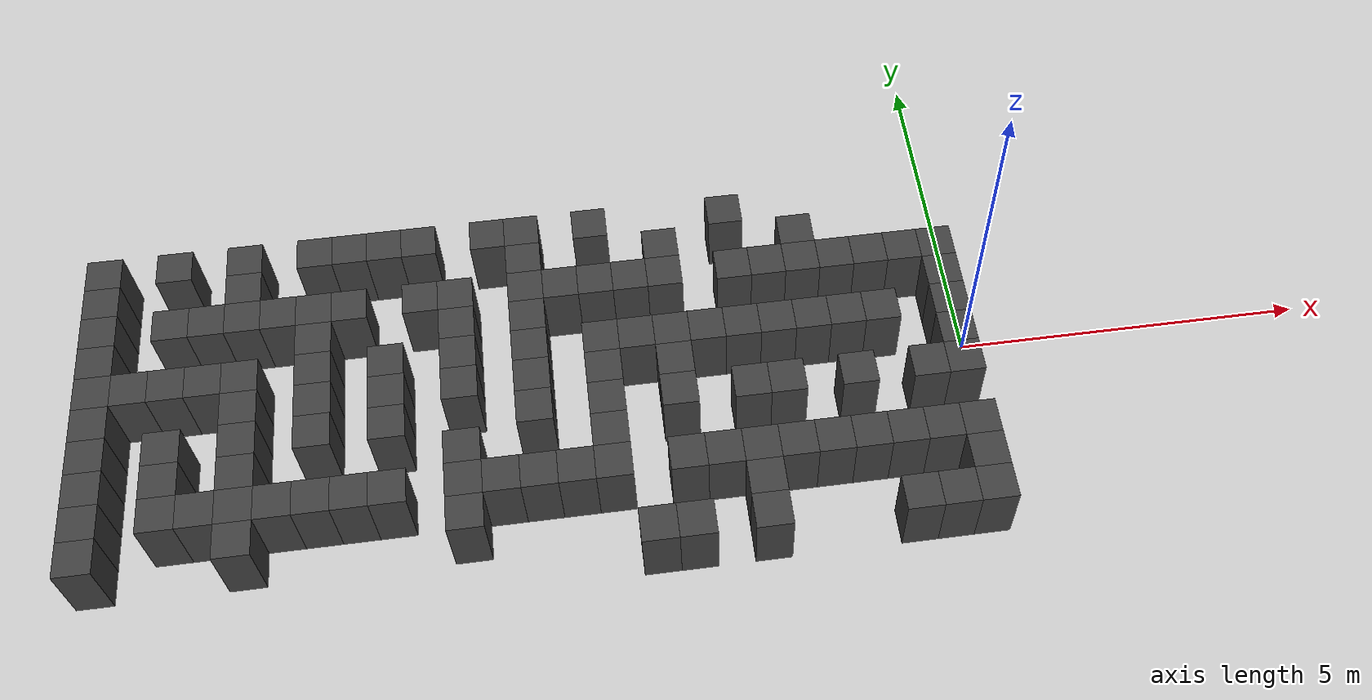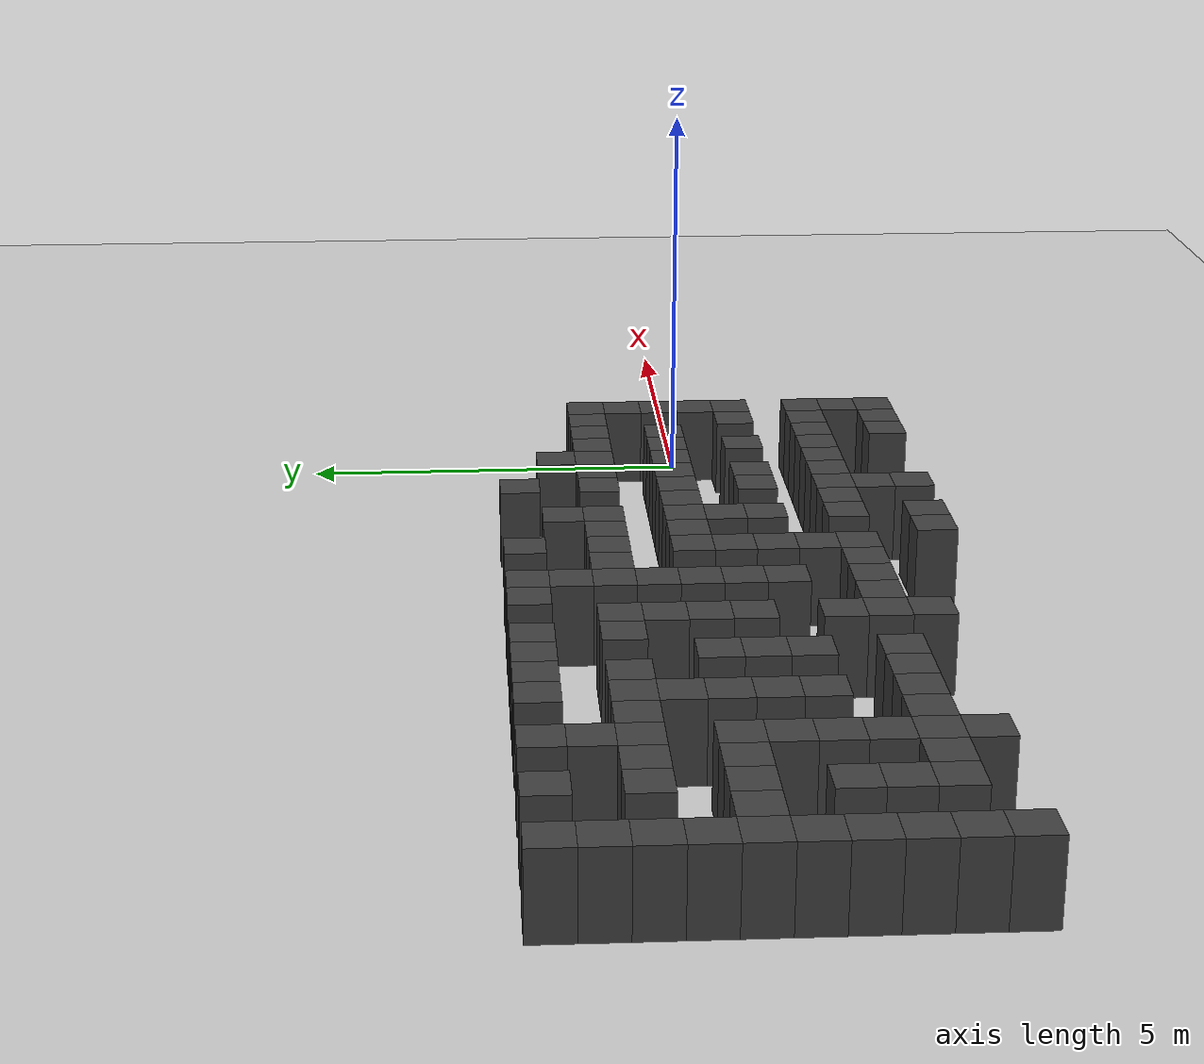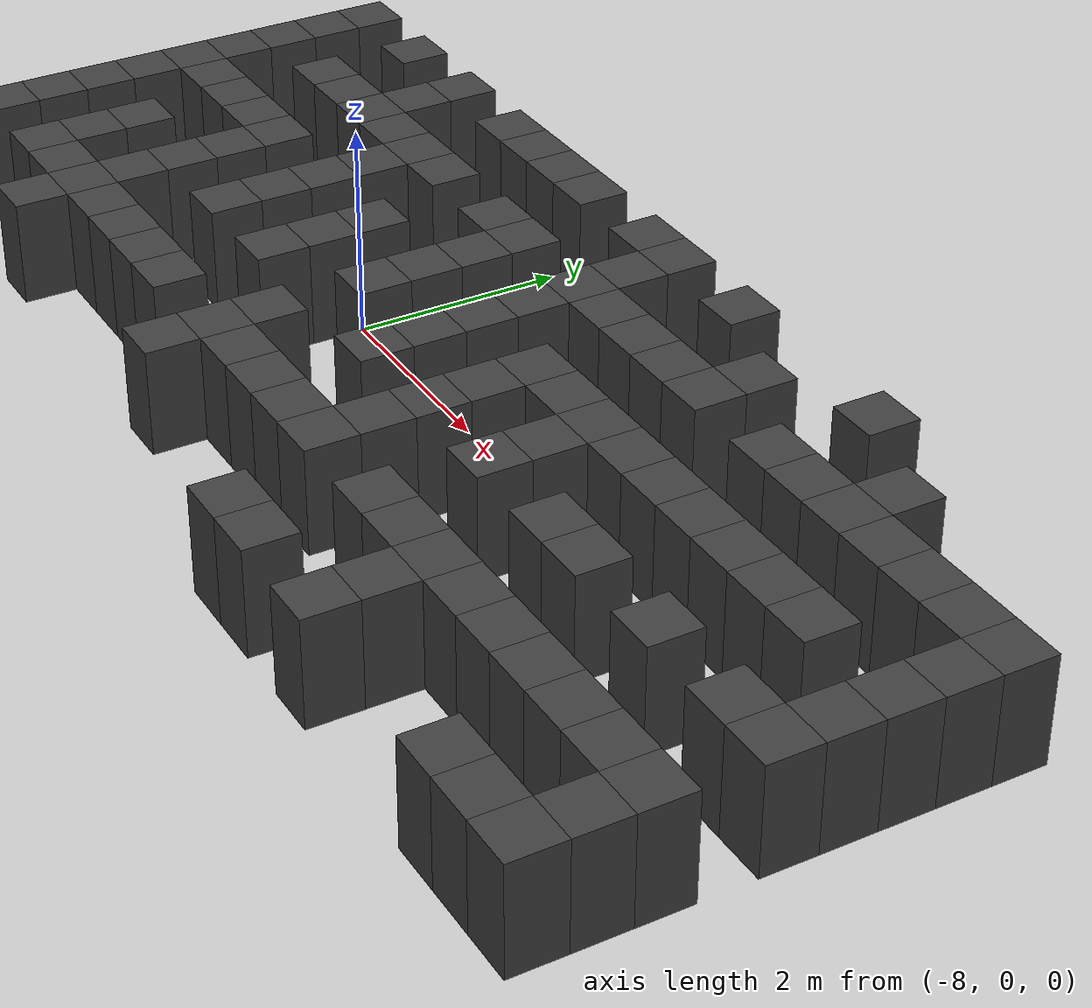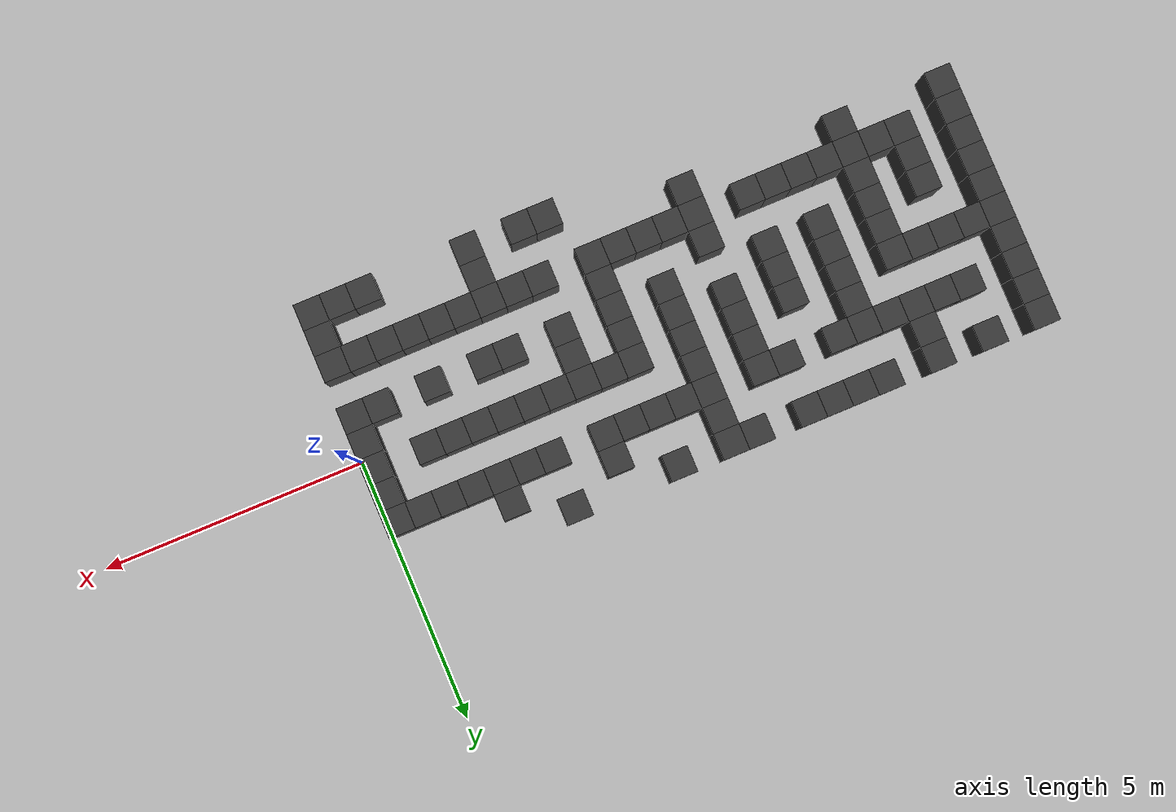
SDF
<sdf version="1.7">
 <world name="map_15497">
  <model name="ground_plane">
   <static>true</static>
   <link name="link">
    <collision name="collision">
     <geometry><plane><normal>0 0 1</normal><size>200 200</size></plane></geometry>
    </collision>
    <visual name="visual">
     <geometry><plane><normal>0 0 1</normal><size>200 200</size></plane></geometry>
     <material><ambient>0.8 0.8 0.8 1</ambient><diffuse>0.8 0.8 0.8 1</diffuse></material>
    </visual>
   </link>
  </model>
  <model name="maze_environment">
   <static>true</static>
   <link name="wall_465">
    <pose>-12.250 2.250 0.500 0 0 0</pose>
    <collision name="col"><geometry><box><size>0.5 0.5 1.0</size></box></geometry></collision>
    <visual name="vis">
     <geometry><box><size>0.5 0.5 1.0</size></box></geometry>
     <material><ambient>0.15 0.15 0.15 1</ambient><diffuse>0.25 0.25 0.25 1</diffuse></material>
    </visual>
   </link>
   <link name="wall_466">
    <pose>-11.250 2.250 0.500 0 0 0</pose>
    <collision name="col"><geometry><box><size>0.5 0.5 1.0</size></box></geometry></collision>
    <visual name="vis">
     <geometry><box><size>0.5 0.5 1.0</size></box></geometry>
     <material><ambient>0.15 0.15 0.15 1</ambient><diffuse>0.25 0.25 0.25 1</diffuse></material>
    </visual>
   </link>
   <link name="wall_467">
    <pose>-10.250 2.250 0.500 0 0 0</pose>
    <collision name="col"><geometry><box><size>0.5 0.5 1.0</size></box></geometry></collision>
    <visual name="vis">
     <geometry><box><size>0.5 0.5 1.0</size></box></geometry>
     <material><ambient>0.15 0.15 0.15 1</ambient><diffuse>0.25 0.25 0.25 1</diffuse></material>
    </visual>
   </link>
   <link name="wall_468">
    <pose>-9.250 2.250 0.500 0 0 0</pose>
    <collision name="col"><geometry><box><size>0.5 0.5 1.0</size></box></geometry></collision>
    <visual name="vis">
     <geometry><box><size>0.5 0.5 1.0</size></box></geometry>
     <material><ambient>0.15 0.15 0.15 1</ambient><diffuse>0.25 0.25 0.25 1</diffuse></material>
    </visual>
   </link>
   <link name="wall_469">
    <pose>-8.750 2.250 0.500 0 0 0</pose>
    <collision name="col"><geometry><box><size>0.5 0.5 1.0</size></box></geometry></collision>
    <visual name="vis">
     <geometry><box><size>0.5 0.5 1.0</size></box></geometry>
     <material><ambient>0.15 0.15 0.15 1</ambient><diffuse>0.25 0.25 0.25 1</diffuse></material>
    </visual>
   </link>
   <link name="wall_470">
    <pose>-8.250 2.250 0.500 0 0 0</pose>
    <collision name="col"><geometry><box><size>0.5 0.5 1.0</size></box></geometry></collision>
    <visual name="vis">
     <geometry><box><size>0.5 0.5 1.0</size></box></geometry>
     <material><ambient>0.15 0.15 0.15 1</ambient><diffuse>0.25 0.25 0.25 1</diffuse></material>
    </visual>
   </link>
   <link name="wall_471">
    <pose>-7.750 2.250 0.500 0 0 0</pose>
    <collision name="col"><geometry><box><size>0.5 0.5 1.0</size></box></geometry></collision>
    <visual name="vis">
     <geometry><box><size>0.5 0.5 1.0</size></box></geometry>
     <material><ambient>0.15 0.15 0.15 1</ambient><diffuse>0.25 0.25 0.25 1</diffuse></material>
    </visual>
   </link>
   <link name="wall_472">
    <pose>-6.750 2.250 0.500 0 0 0</pose>
    <collision name="col"><geometry><box><size>0.5 0.5 1.0</size></box></geometry></collision>
    <visual name="vis">
     <geometry><box><size>0.5 0.5 1.0</size></box></geometry>
     <material><ambient>0.15 0.15 0.15 1</ambient><diffuse>0.25 0.25 0.25 1</diffuse></material>
    </visual>
   </link>
   <link name="wall_473">
    <pose>-6.250 2.250 0.500 0 0 0</pose>
    <collision name="col"><geometry><box><size>0.5 0.5 1.0</size></box></geometry></collision>
    <visual name="vis">
     <geometry><box><size>0.5 0.5 1.0</size></box></geometry>
     <material><ambient>0.15 0.15 0.15 1</ambient><diffuse>0.25 0.25 0.25 1</diffuse></material>
    </visual>
   </link>
   <link name="wall_474">
    <pose>-5.250 2.250 0.500 0 0 0</pose>
    <collision name="col"><geometry><box><size>0.5 0.5 1.0</size></box></geometry></collision>
    <visual name="vis">
     <geometry><box><size>0.5 0.5 1.0</size></box></geometry>
     <material><ambient>0.15 0.15 0.15 1</ambient><diffuse>0.25 0.25 0.25 1</diffuse></material>
    </visual>
   </link>
   <link name="wall_475">
    <pose>-3.250 2.250 0.500 0 0 0</pose>
    <collision name="col"><geometry><box><size>0.5 0.5 1.0</size></box></geometry></collision>
    <visual name="vis">
     <geometry><box><size>0.5 0.5 1.0</size></box></geometry>
     <material><ambient>0.15 0.15 0.15 1</ambient><diffuse>0.25 0.25 0.25 1</diffuse></material>
    </visual>
   </link>
   <link name="wall_497">
    <pose>-12.250 1.750 0.500 0 0 0</pose>
    <collision name="col"><geometry><box><size>0.5 0.5 1.0</size></box></geometry></collision>
    <visual name="vis">
     <geometry><box><size>0.5 0.5 1.0</size></box></geometry>
     <material><ambient>0.15 0.15 0.15 1</ambient><diffuse>0.25 0.25 0.25 1</diffuse></material>
    </visual>
   </link>
   <link name="wall_498">
    <pose>-10.250 1.750 0.500 0 0 0</pose>
    <collision name="col"><geometry><box><size>0.5 0.5 1.0</size></box></geometry></collision>
    <visual name="vis">
     <geometry><box><size>0.5 0.5 1.0</size></box></geometry>
     <material><ambient>0.15 0.15 0.15 1</ambient><diffuse>0.25 0.25 0.25 1</diffuse></material>
    </visual>
   </link>
   <link name="wall_499">
    <pose>-6.250 1.750 0.500 0 0 0</pose>
    <collision name="col"><geometry><box><size>0.5 0.5 1.0</size></box></geometry></collision>
    <visual name="vis">
     <geometry><box><size>0.5 0.5 1.0</size></box></geometry>
     <material><ambient>0.15 0.15 0.15 1</ambient><diffuse>0.25 0.25 0.25 1</diffuse></material>
    </visual>
   </link>
   <link name="wall_500">
    <pose>-4.250 1.750 0.500 0 0 0</pose>
    <collision name="col"><geometry><box><size>0.5 0.5 1.0</size></box></geometry></collision>
    <visual name="vis">
     <geometry><box><size>0.5 0.5 1.0</size></box></geometry>
     <material><ambient>0.15 0.15 0.15 1</ambient><diffuse>0.25 0.25 0.25 1</diffuse></material>
    </visual>
   </link>
   <link name="wall_501">
    <pose>-2.250 1.750 0.500 0 0 0</pose>
    <collision name="col"><geometry><box><size>0.5 0.5 1.0</size></box></geometry></collision>
    <visual name="vis">
     <geometry><box><size>0.5 0.5 1.0</size></box></geometry>
     <material><ambient>0.15 0.15 0.15 1</ambient><diffuse>0.25 0.25 0.25 1</diffuse></material>
    </visual>
   </link>
   <link name="wall_510">
    <pose>-12.250 1.250 0.500 0 0 0</pose>
    <collision name="col"><geometry><box><size>0.5 0.5 1.0</size></box></geometry></collision>
    <visual name="vis">
     <geometry><box><size>0.5 0.5 1.0</size></box></geometry>
     <material><ambient>0.15 0.15 0.15 1</ambient><diffuse>0.25 0.25 0.25 1</diffuse></material>
    </visual>
   </link>
   <link name="wall_511">
    <pose>-11.250 1.250 0.500 0 0 0</pose>
    <collision name="col"><geometry><box><size>0.5 0.5 1.0</size></box></geometry></collision>
    <visual name="vis">
     <geometry><box><size>0.5 0.5 1.0</size></box></geometry>
     <material><ambient>0.15 0.15 0.15 1</ambient><diffuse>0.25 0.25 0.25 1</diffuse></material>
    </visual>
   </link>
   <link name="wall_512">
    <pose>-10.750 1.250 0.500 0 0 0</pose>
    <collision name="col"><geometry><box><size>0.5 0.5 1.0</size></box></geometry></collision>
    <visual name="vis">
     <geometry><box><size>0.5 0.5 1.0</size></box></geometry>
     <material><ambient>0.15 0.15 0.15 1</ambient><diffuse>0.25 0.25 0.25 1</diffuse></material>
    </visual>
   </link>
   <link name="wall_513">
    <pose>-10.250 1.250 0.500 0 0 0</pose>
    <collision name="col"><geometry><box><size>0.5 0.5 1.0</size></box></geometry></collision>
    <visual name="vis">
     <geometry><box><size>0.5 0.5 1.0</size></box></geometry>
     <material><ambient>0.15 0.15 0.15 1</ambient><diffuse>0.25 0.25 0.25 1</diffuse></material>
    </visual>
   </link>
   <link name="wall_514">
    <pose>-9.750 1.250 0.500 0 0 0</pose>
    <collision name="col"><geometry><box><size>0.5 0.5 1.0</size></box></geometry></collision>
    <visual name="vis">
     <geometry><box><size>0.5 0.5 1.0</size></box></geometry>
     <material><ambient>0.15 0.15 0.15 1</ambient><diffuse>0.25 0.25 0.25 1</diffuse></material>
    </visual>
   </link>
   <link name="wall_515">
    <pose>-9.250 1.250 0.500 0 0 0</pose>
    <collision name="col"><geometry><box><size>0.5 0.5 1.0</size></box></geometry></collision>
    <visual name="vis">
     <geometry><box><size>0.5 0.5 1.0</size></box></geometry>
     <material><ambient>0.15 0.15 0.15 1</ambient><diffuse>0.25 0.25 0.25 1</diffuse></material>
    </visual>
   </link>
   <link name="wall_516">
    <pose>-8.750 1.250 0.500 0 0 0</pose>
    <collision name="col"><geometry><box><size>0.5 0.5 1.0</size></box></geometry></collision>
    <visual name="vis">
     <geometry><box><size>0.5 0.5 1.0</size></box></geometry>
     <material><ambient>0.15 0.15 0.15 1</ambient><diffuse>0.25 0.25 0.25 1</diffuse></material>
    </visual>
   </link>
   <link name="wall_517">
    <pose>-7.750 1.250 0.500 0 0 0</pose>
    <collision name="col"><geometry><box><size>0.5 0.5 1.0</size></box></geometry></collision>
    <visual name="vis">
     <geometry><box><size>0.5 0.5 1.0</size></box></geometry>
     <material><ambient>0.15 0.15 0.15 1</ambient><diffuse>0.25 0.25 0.25 1</diffuse></material>
    </visual>
   </link>
   <link name="wall_518">
    <pose>-7.250 1.250 0.500 0 0 0</pose>
    <collision name="col"><geometry><box><size>0.5 0.5 1.0</size></box></geometry></collision>
    <visual name="vis">
     <geometry><box><size>0.5 0.5 1.0</size></box></geometry>
     <material><ambient>0.15 0.15 0.15 1</ambient><diffuse>0.25 0.25 0.25 1</diffuse></material>
    </visual>
   </link>
   <link name="wall_519">
    <pose>-6.250 1.250 0.500 0 0 0</pose>
    <collision name="col"><geometry><box><size>0.5 0.5 1.0</size></box></geometry></collision>
    <visual name="vis">
     <geometry><box><size>0.5 0.5 1.0</size></box></geometry>
     <material><ambient>0.15 0.15 0.15 1</ambient><diffuse>0.25 0.25 0.25 1</diffuse></material>
    </visual>
   </link>
   <link name="wall_520">
    <pose>-5.750 1.250 0.500 0 0 0</pose>
    <collision name="col"><geometry><box><size>0.5 0.5 1.0</size></box></geometry></collision>
    <visual name="vis">
     <geometry><box><size>0.5 0.5 1.0</size></box></geometry>
     <material><ambient>0.15 0.15 0.15 1</ambient><diffuse>0.25 0.25 0.25 1</diffuse></material>
    </visual>
   </link>
   <link name="wall_521">
    <pose>-5.250 1.250 0.500 0 0 0</pose>
    <collision name="col"><geometry><box><size>0.5 0.5 1.0</size></box></geometry></collision>
    <visual name="vis">
     <geometry><box><size>0.5 0.5 1.0</size></box></geometry>
     <material><ambient>0.15 0.15 0.15 1</ambient><diffuse>0.25 0.25 0.25 1</diffuse></material>
    </visual>
   </link>
   <link name="wall_522">
    <pose>-4.750 1.250 0.500 0 0 0</pose>
    <collision name="col"><geometry><box><size>0.5 0.5 1.0</size></box></geometry></collision>
    <visual name="vis">
     <geometry><box><size>0.5 0.5 1.0</size></box></geometry>
     <material><ambient>0.15 0.15 0.15 1</ambient><diffuse>0.25 0.25 0.25 1</diffuse></material>
    </visual>
   </link>
   <link name="wall_523">
    <pose>-4.250 1.250 0.500 0 0 0</pose>
    <collision name="col"><geometry><box><size>0.5 0.5 1.0</size></box></geometry></collision>
    <visual name="vis">
     <geometry><box><size>0.5 0.5 1.0</size></box></geometry>
     <material><ambient>0.15 0.15 0.15 1</ambient><diffuse>0.25 0.25 0.25 1</diffuse></material>
    </visual>
   </link>
   <link name="wall_524">
    <pose>-3.250 1.250 0.500 0 0 0</pose>
    <collision name="col"><geometry><box><size>0.5 0.5 1.0</size></box></geometry></collision>
    <visual name="vis">
     <geometry><box><size>0.5 0.5 1.0</size></box></geometry>
     <material><ambient>0.15 0.15 0.15 1</ambient><diffuse>0.25 0.25 0.25 1</diffuse></material>
    </visual>
   </link>
   <link name="wall_525">
    <pose>-2.750 1.250 0.500 0 0 0</pose>
    <collision name="col"><geometry><box><size>0.5 0.5 1.0</size></box></geometry></collision>
    <visual name="vis">
     <geometry><box><size>0.5 0.5 1.0</size></box></geometry>
     <material><ambient>0.15 0.15 0.15 1</ambient><diffuse>0.25 0.25 0.25 1</diffuse></material>
    </visual>
   </link>
   <link name="wall_526">
    <pose>-2.250 1.250 0.500 0 0 0</pose>
    <collision name="col"><geometry><box><size>0.5 0.5 1.0</size></box></geometry></collision>
    <visual name="vis">
     <geometry><box><size>0.5 0.5 1.0</size></box></geometry>
     <material><ambient>0.15 0.15 0.15 1</ambient><diffuse>0.25 0.25 0.25 1</diffuse></material>
    </visual>
   </link>
   <link name="wall_527">
    <pose>-1.750 1.250 0.500 0 0 0</pose>
    <collision name="col"><geometry><box><size>0.5 0.5 1.0</size></box></geometry></collision>
    <visual name="vis">
     <geometry><box><size>0.5 0.5 1.0</size></box></geometry>
     <material><ambient>0.15 0.15 0.15 1</ambient><diffuse>0.25 0.25 0.25 1</diffuse></material>
    </visual>
   </link>
   <link name="wall_528">
    <pose>-1.250 1.250 0.500 0 0 0</pose>
    <collision name="col"><geometry><box><size>0.5 0.5 1.0</size></box></geometry></collision>
    <visual name="vis">
     <geometry><box><size>0.5 0.5 1.0</size></box></geometry>
     <material><ambient>0.15 0.15 0.15 1</ambient><diffuse>0.25 0.25 0.25 1</diffuse></material>
    </visual>
   </link>
   <link name="wall_529">
    <pose>-0.750 1.250 0.500 0 0 0</pose>
    <collision name="col"><geometry><box><size>0.5 0.5 1.0</size></box></geometry></collision>
    <visual name="vis">
     <geometry><box><size>0.5 0.5 1.0</size></box></geometry>
     <material><ambient>0.15 0.15 0.15 1</ambient><diffuse>0.25 0.25 0.25 1</diffuse></material>
    </visual>
   </link>
   <link name="wall_530">
    <pose>-0.250 1.250 0.500 0 0 0</pose>
    <collision name="col"><geometry><box><size>0.5 0.5 1.0</size></box></geometry></collision>
    <visual name="vis">
     <geometry><box><size>0.5 0.5 1.0</size></box></geometry>
     <material><ambient>0.15 0.15 0.15 1</ambient><diffuse>0.25 0.25 0.25 1</diffuse></material>
    </visual>
   </link>
   <link name="wall_546">
    <pose>-12.250 0.750 0.500 0 0 0</pose>
    <collision name="col"><geometry><box><size>0.5 0.5 1.0</size></box></geometry></collision>
    <visual name="vis">
     <geometry><box><size>0.5 0.5 1.0</size></box></geometry>
     <material><ambient>0.15 0.15 0.15 1</ambient><diffuse>0.25 0.25 0.25 1</diffuse></material>
    </visual>
   </link>
   <link name="wall_547">
    <pose>-9.250 0.750 0.500 0 0 0</pose>
    <collision name="col"><geometry><box><size>0.5 0.5 1.0</size></box></geometry></collision>
    <visual name="vis">
     <geometry><box><size>0.5 0.5 1.0</size></box></geometry>
     <material><ambient>0.15 0.15 0.15 1</ambient><diffuse>0.25 0.25 0.25 1</diffuse></material>
    </visual>
   </link>
   <link name="wall_548">
    <pose>-7.250 0.750 0.500 0 0 0</pose>
    <collision name="col"><geometry><box><size>0.5 0.5 1.0</size></box></geometry></collision>
    <visual name="vis">
     <geometry><box><size>0.5 0.5 1.0</size></box></geometry>
     <material><ambient>0.15 0.15 0.15 1</ambient><diffuse>0.25 0.25 0.25 1</diffuse></material>
    </visual>
   </link>
   <link name="wall_549">
    <pose>-6.250 0.750 0.500 0 0 0</pose>
    <collision name="col"><geometry><box><size>0.5 0.5 1.0</size></box></geometry></collision>
    <visual name="vis">
     <geometry><box><size>0.5 0.5 1.0</size></box></geometry>
     <material><ambient>0.15 0.15 0.15 1</ambient><diffuse>0.25 0.25 0.25 1</diffuse></material>
    </visual>
   </link>
   <link name="wall_550">
    <pose>-0.250 0.750 0.500 0 0 0</pose>
    <collision name="col"><geometry><box><size>0.5 0.5 1.0</size></box></geometry></collision>
    <visual name="vis">
     <geometry><box><size>0.5 0.5 1.0</size></box></geometry>
     <material><ambient>0.15 0.15 0.15 1</ambient><diffuse>0.25 0.25 0.25 1</diffuse></material>
    </visual>
   </link>
   <link name="wall_557">
    <pose>-12.250 0.250 0.500 0 0 0</pose>
    <collision name="col"><geometry><box><size>0.5 0.5 1.0</size></box></geometry></collision>
    <visual name="vis">
     <geometry><box><size>0.5 0.5 1.0</size></box></geometry>
     <material><ambient>0.15 0.15 0.15 1</ambient><diffuse>0.25 0.25 0.25 1</diffuse></material>
    </visual>
   </link>
   <link name="wall_558">
    <pose>-11.750 0.250 0.500 0 0 0</pose>
    <collision name="col"><geometry><box><size>0.5 0.5 1.0</size></box></geometry></collision>
    <visual name="vis">
     <geometry><box><size>0.5 0.5 1.0</size></box></geometry>
     <material><ambient>0.15 0.15 0.15 1</ambient><diffuse>0.25 0.25 0.25 1</diffuse></material>
    </visual>
   </link>
   <link name="wall_559">
    <pose>-11.250 0.250 0.500 0 0 0</pose>
    <collision name="col"><geometry><box><size>0.5 0.5 1.0</size></box></geometry></collision>
    <visual name="vis">
     <geometry><box><size>0.5 0.5 1.0</size></box></geometry>
     <material><ambient>0.15 0.15 0.15 1</ambient><diffuse>0.25 0.25 0.25 1</diffuse></material>
    </visual>
   </link>
   <link name="wall_560">
    <pose>-10.750 0.250 0.500 0 0 0</pose>
    <collision name="col"><geometry><box><size>0.5 0.5 1.0</size></box></geometry></collision>
    <visual name="vis">
     <geometry><box><size>0.5 0.5 1.0</size></box></geometry>
     <material><ambient>0.15 0.15 0.15 1</ambient><diffuse>0.25 0.25 0.25 1</diffuse></material>
    </visual>
   </link>
   <link name="wall_561">
    <pose>-10.250 0.250 0.500 0 0 0</pose>
    <collision name="col"><geometry><box><size>0.5 0.5 1.0</size></box></geometry></collision>
    <visual name="vis">
     <geometry><box><size>0.5 0.5 1.0</size></box></geometry>
     <material><ambient>0.15 0.15 0.15 1</ambient><diffuse>0.25 0.25 0.25 1</diffuse></material>
    </visual>
   </link>
   <link name="wall_562">
    <pose>-9.250 0.250 0.500 0 0 0</pose>
    <collision name="col"><geometry><box><size>0.5 0.5 1.0</size></box></geometry></collision>
    <visual name="vis">
     <geometry><box><size>0.5 0.5 1.0</size></box></geometry>
     <material><ambient>0.15 0.15 0.15 1</ambient><diffuse>0.25 0.25 0.25 1</diffuse></material>
    </visual>
   </link>
   <link name="wall_563">
    <pose>-8.250 0.250 0.500 0 0 0</pose>
    <collision name="col"><geometry><box><size>0.5 0.5 1.0</size></box></geometry></collision>
    <visual name="vis">
     <geometry><box><size>0.5 0.5 1.0</size></box></geometry>
     <material><ambient>0.15 0.15 0.15 1</ambient><diffuse>0.25 0.25 0.25 1</diffuse></material>
    </visual>
   </link>
   <link name="wall_564">
    <pose>-7.250 0.250 0.500 0 0 0</pose>
    <collision name="col"><geometry><box><size>0.5 0.5 1.0</size></box></geometry></collision>
    <visual name="vis">
     <geometry><box><size>0.5 0.5 1.0</size></box></geometry>
     <material><ambient>0.15 0.15 0.15 1</ambient><diffuse>0.25 0.25 0.25 1</diffuse></material>
    </visual>
   </link>
   <link name="wall_565">
    <pose>-6.250 0.250 0.500 0 0 0</pose>
    <collision name="col"><geometry><box><size>0.5 0.5 1.0</size></box></geometry></collision>
    <visual name="vis">
     <geometry><box><size>0.5 0.5 1.0</size></box></geometry>
     <material><ambient>0.15 0.15 0.15 1</ambient><diffuse>0.25 0.25 0.25 1</diffuse></material>
    </visual>
   </link>
   <link name="wall_566">
    <pose>-5.250 0.250 0.500 0 0 0</pose>
    <collision name="col"><geometry><box><size>0.5 0.5 1.0</size></box></geometry></collision>
    <visual name="vis">
     <geometry><box><size>0.5 0.5 1.0</size></box></geometry>
     <material><ambient>0.15 0.15 0.15 1</ambient><diffuse>0.25 0.25 0.25 1</diffuse></material>
    </visual>
   </link>
   <link name="wall_567">
    <pose>-4.750 0.250 0.500 0 0 0</pose>
    <collision name="col"><geometry><box><size>0.5 0.5 1.0</size></box></geometry></collision>
    <visual name="vis">
     <geometry><box><size>0.5 0.5 1.0</size></box></geometry>
     <material><ambient>0.15 0.15 0.15 1</ambient><diffuse>0.25 0.25 0.25 1</diffuse></material>
    </visual>
   </link>
   <link name="wall_568">
    <pose>-4.250 0.250 0.500 0 0 0</pose>
    <collision name="col"><geometry><box><size>0.5 0.5 1.0</size></box></geometry></collision>
    <visual name="vis">
     <geometry><box><size>0.5 0.5 1.0</size></box></geometry>
     <material><ambient>0.15 0.15 0.15 1</ambient><diffuse>0.25 0.25 0.25 1</diffuse></material>
    </visual>
   </link>
   <link name="wall_569">
    <pose>-3.750 0.250 0.500 0 0 0</pose>
    <collision name="col"><geometry><box><size>0.5 0.5 1.0</size></box></geometry></collision>
    <visual name="vis">
     <geometry><box><size>0.5 0.5 1.0</size></box></geometry>
     <material><ambient>0.15 0.15 0.15 1</ambient><diffuse>0.25 0.25 0.25 1</diffuse></material>
    </visual>
   </link>
   <link name="wall_570">
    <pose>-3.250 0.250 0.500 0 0 0</pose>
    <collision name="col"><geometry><box><size>0.5 0.5 1.0</size></box></geometry></collision>
    <visual name="vis">
     <geometry><box><size>0.5 0.5 1.0</size></box></geometry>
     <material><ambient>0.15 0.15 0.15 1</ambient><diffuse>0.25 0.25 0.25 1</diffuse></material>
    </visual>
   </link>
   <link name="wall_571">
    <pose>-2.750 0.250 0.500 0 0 0</pose>
    <collision name="col"><geometry><box><size>0.5 0.5 1.0</size></box></geometry></collision>
    <visual name="vis">
     <geometry><box><size>0.5 0.5 1.0</size></box></geometry>
     <material><ambient>0.15 0.15 0.15 1</ambient><diffuse>0.25 0.25 0.25 1</diffuse></material>
    </visual>
   </link>
   <link name="wall_572">
    <pose>-2.250 0.250 0.500 0 0 0</pose>
    <collision name="col"><geometry><box><size>0.5 0.5 1.0</size></box></geometry></collision>
    <visual name="vis">
     <geometry><box><size>0.5 0.5 1.0</size></box></geometry>
     <material><ambient>0.15 0.15 0.15 1</ambient><diffuse>0.25 0.25 0.25 1</diffuse></material>
    </visual>
   </link>
   <link name="wall_573">
    <pose>-1.750 0.250 0.500 0 0 0</pose>
    <collision name="col"><geometry><box><size>0.5 0.5 1.0</size></box></geometry></collision>
    <visual name="vis">
     <geometry><box><size>0.5 0.5 1.0</size></box></geometry>
     <material><ambient>0.15 0.15 0.15 1</ambient><diffuse>0.25 0.25 0.25 1</diffuse></material>
    </visual>
   </link>
   <link name="wall_574">
    <pose>-1.250 0.250 0.500 0 0 0</pose>
    <collision name="col"><geometry><box><size>0.5 0.5 1.0</size></box></geometry></collision>
    <visual name="vis">
     <geometry><box><size>0.5 0.5 1.0</size></box></geometry>
     <material><ambient>0.15 0.15 0.15 1</ambient><diffuse>0.25 0.25 0.25 1</diffuse></material>
    </visual>
   </link>
   <link name="wall_575">
    <pose>-0.250 0.250 0.500 0 0 0</pose>
    <collision name="col"><geometry><box><size>0.5 0.5 1.0</size></box></geometry></collision>
    <visual name="vis">
     <geometry><box><size>0.5 0.5 1.0</size></box></geometry>
     <material><ambient>0.15 0.15 0.15 1</ambient><diffuse>0.25 0.25 0.25 1</diffuse></material>
    </visual>
   </link>
   <link name="wall_593">
    <pose>-12.250 -0.250 0.500 0 0 0</pose>
    <collision name="col"><geometry><box><size>0.5 0.5 1.0</size></box></geometry></collision>
    <visual name="vis">
     <geometry><box><size>0.5 0.5 1.0</size></box></geometry>
     <material><ambient>0.15 0.15 0.15 1</ambient><diffuse>0.25 0.25 0.25 1</diffuse></material>
    </visual>
   </link>
   <link name="wall_594">
    <pose>-10.250 -0.250 0.500 0 0 0</pose>
    <collision name="col"><geometry><box><size>0.5 0.5 1.0</size></box></geometry></collision>
    <visual name="vis">
     <geometry><box><size>0.5 0.5 1.0</size></box></geometry>
     <material><ambient>0.15 0.15 0.15 1</ambient><diffuse>0.25 0.25 0.25 1</diffuse></material>
    </visual>
   </link>
   <link name="wall_595">
    <pose>-9.250 -0.250 0.500 0 0 0</pose>
    <collision name="col"><geometry><box><size>0.5 0.5 1.0</size></box></geometry></collision>
    <visual name="vis">
     <geometry><box><size>0.5 0.5 1.0</size></box></geometry>
     <material><ambient>0.15 0.15 0.15 1</ambient><diffuse>0.25 0.25 0.25 1</diffuse></material>
    </visual>
   </link>
   <link name="wall_596">
    <pose>-8.250 -0.250 0.500 0 0 0</pose>
    <collision name="col"><geometry><box><size>0.5 0.5 1.0</size></box></geometry></collision>
    <visual name="vis">
     <geometry><box><size>0.5 0.5 1.0</size></box></geometry>
     <material><ambient>0.15 0.15 0.15 1</ambient><diffuse>0.25 0.25 0.25 1</diffuse></material>
    </visual>
   </link>
   <link name="wall_597">
    <pose>-7.250 -0.250 0.500 0 0 0</pose>
    <collision name="col"><geometry><box><size>0.5 0.5 1.0</size></box></geometry></collision>
    <visual name="vis">
     <geometry><box><size>0.5 0.5 1.0</size></box></geometry>
     <material><ambient>0.15 0.15 0.15 1</ambient><diffuse>0.25 0.25 0.25 1</diffuse></material>
    </visual>
   </link>
   <link name="wall_598">
    <pose>-6.250 -0.250 0.500 0 0 0</pose>
    <collision name="col"><geometry><box><size>0.5 0.5 1.0</size></box></geometry></collision>
    <visual name="vis">
     <geometry><box><size>0.5 0.5 1.0</size></box></geometry>
     <material><ambient>0.15 0.15 0.15 1</ambient><diffuse>0.25 0.25 0.25 1</diffuse></material>
    </visual>
   </link>
   <link name="wall_599">
    <pose>-5.250 -0.250 0.500 0 0 0</pose>
    <collision name="col"><geometry><box><size>0.5 0.5 1.0</size></box></geometry></collision>
    <visual name="vis">
     <geometry><box><size>0.5 0.5 1.0</size></box></geometry>
     <material><ambient>0.15 0.15 0.15 1</ambient><diffuse>0.25 0.25 0.25 1</diffuse></material>
    </visual>
   </link>
   <link name="wall_600">
    <pose>-4.250 -0.250 0.500 0 0 0</pose>
    <collision name="col"><geometry><box><size>0.5 0.5 1.0</size></box></geometry></collision>
    <visual name="vis">
     <geometry><box><size>0.5 0.5 1.0</size></box></geometry>
     <material><ambient>0.15 0.15 0.15 1</ambient><diffuse>0.25 0.25 0.25 1</diffuse></material>
    </visual>
   </link>
   <link name="wall_601">
    <pose>-0.250 -0.250 0.500 0 0 0</pose>
    <collision name="col"><geometry><box><size>0.5 0.5 1.0</size></box></geometry></collision>
    <visual name="vis">
     <geometry><box><size>0.5 0.5 1.0</size></box></geometry>
     <material><ambient>0.15 0.15 0.15 1</ambient><diffuse>0.25 0.25 0.25 1</diffuse></material>
    </visual>
   </link>
   <link name="wall_608">
    <pose>-12.250 -0.750 0.500 0 0 0</pose>
    <collision name="col"><geometry><box><size>0.5 0.5 1.0</size></box></geometry></collision>
    <visual name="vis">
     <geometry><box><size>0.5 0.5 1.0</size></box></geometry>
     <material><ambient>0.15 0.15 0.15 1</ambient><diffuse>0.25 0.25 0.25 1</diffuse></material>
    </visual>
   </link>
   <link name="wall_609">
    <pose>-11.250 -0.750 0.500 0 0 0</pose>
    <collision name="col"><geometry><box><size>0.5 0.5 1.0</size></box></geometry></collision>
    <visual name="vis">
     <geometry><box><size>0.5 0.5 1.0</size></box></geometry>
     <material><ambient>0.15 0.15 0.15 1</ambient><diffuse>0.25 0.25 0.25 1</diffuse></material>
    </visual>
   </link>
   <link name="wall_610">
    <pose>-10.250 -0.750 0.500 0 0 0</pose>
    <collision name="col"><geometry><box><size>0.5 0.5 1.0</size></box></geometry></collision>
    <visual name="vis">
     <geometry><box><size>0.5 0.5 1.0</size></box></geometry>
     <material><ambient>0.15 0.15 0.15 1</ambient><diffuse>0.25 0.25 0.25 1</diffuse></material>
    </visual>
   </link>
   <link name="wall_611">
    <pose>-9.250 -0.750 0.500 0 0 0</pose>
    <collision name="col"><geometry><box><size>0.5 0.5 1.0</size></box></geometry></collision>
    <visual name="vis">
     <geometry><box><size>0.5 0.5 1.0</size></box></geometry>
     <material><ambient>0.15 0.15 0.15 1</ambient><diffuse>0.25 0.25 0.25 1</diffuse></material>
    </visual>
   </link>
   <link name="wall_612">
    <pose>-8.250 -0.750 0.500 0 0 0</pose>
    <collision name="col"><geometry><box><size>0.5 0.5 1.0</size></box></geometry></collision>
    <visual name="vis">
     <geometry><box><size>0.5 0.5 1.0</size></box></geometry>
     <material><ambient>0.15 0.15 0.15 1</ambient><diffuse>0.25 0.25 0.25 1</diffuse></material>
    </visual>
   </link>
   <link name="wall_613">
    <pose>-6.250 -0.750 0.500 0 0 0</pose>
    <collision name="col"><geometry><box><size>0.5 0.5 1.0</size></box></geometry></collision>
    <visual name="vis">
     <geometry><box><size>0.5 0.5 1.0</size></box></geometry>
     <material><ambient>0.15 0.15 0.15 1</ambient><diffuse>0.25 0.25 0.25 1</diffuse></material>
    </visual>
   </link>
   <link name="wall_614">
    <pose>-5.250 -0.750 0.500 0 0 0</pose>
    <collision name="col"><geometry><box><size>0.5 0.5 1.0</size></box></geometry></collision>
    <visual name="vis">
     <geometry><box><size>0.5 0.5 1.0</size></box></geometry>
     <material><ambient>0.15 0.15 0.15 1</ambient><diffuse>0.25 0.25 0.25 1</diffuse></material>
    </visual>
   </link>
   <link name="wall_615">
    <pose>-4.250 -0.750 0.500 0 0 0</pose>
    <collision name="col"><geometry><box><size>0.5 0.5 1.0</size></box></geometry></collision>
    <visual name="vis">
     <geometry><box><size>0.5 0.5 1.0</size></box></geometry>
     <material><ambient>0.15 0.15 0.15 1</ambient><diffuse>0.25 0.25 0.25 1</diffuse></material>
    </visual>
   </link>
   <link name="wall_616">
    <pose>-3.250 -0.750 0.500 0 0 0</pose>
    <collision name="col"><geometry><box><size>0.5 0.5 1.0</size></box></geometry></collision>
    <visual name="vis">
     <geometry><box><size>0.5 0.5 1.0</size></box></geometry>
     <material><ambient>0.15 0.15 0.15 1</ambient><diffuse>0.25 0.25 0.25 1</diffuse></material>
    </visual>
   </link>
   <link name="wall_617">
    <pose>-2.750 -0.750 0.500 0 0 0</pose>
    <collision name="col"><geometry><box><size>0.5 0.5 1.0</size></box></geometry></collision>
    <visual name="vis">
     <geometry><box><size>0.5 0.5 1.0</size></box></geometry>
     <material><ambient>0.15 0.15 0.15 1</ambient><diffuse>0.25 0.25 0.25 1</diffuse></material>
    </visual>
   </link>
   <link name="wall_618">
    <pose>-1.750 -0.750 0.500 0 0 0</pose>
    <collision name="col"><geometry><box><size>0.5 0.5 1.0</size></box></geometry></collision>
    <visual name="vis">
     <geometry><box><size>0.5 0.5 1.0</size></box></geometry>
     <material><ambient>0.15 0.15 0.15 1</ambient><diffuse>0.25 0.25 0.25 1</diffuse></material>
    </visual>
   </link>
   <link name="wall_619">
    <pose>-0.750 -0.750 0.500 0 0 0</pose>
    <collision name="col"><geometry><box><size>0.5 0.5 1.0</size></box></geometry></collision>
    <visual name="vis">
     <geometry><box><size>0.5 0.5 1.0</size></box></geometry>
     <material><ambient>0.15 0.15 0.15 1</ambient><diffuse>0.25 0.25 0.25 1</diffuse></material>
    </visual>
   </link>
   <link name="wall_620">
    <pose>-0.250 -0.750 0.500 0 0 0</pose>
    <collision name="col"><geometry><box><size>0.5 0.5 1.0</size></box></geometry></collision>
    <visual name="vis">
     <geometry><box><size>0.5 0.5 1.0</size></box></geometry>
     <material><ambient>0.15 0.15 0.15 1</ambient><diffuse>0.25 0.25 0.25 1</diffuse></material>
    </visual>
   </link>
   <link name="wall_637">
    <pose>-12.250 -1.250 0.500 0 0 0</pose>
    <collision name="col"><geometry><box><size>0.5 0.5 1.0</size></box></geometry></collision>
    <visual name="vis">
     <geometry><box><size>0.5 0.5 1.0</size></box></geometry>
     <material><ambient>0.15 0.15 0.15 1</ambient><diffuse>0.25 0.25 0.25 1</diffuse></material>
    </visual>
   </link>
   <link name="wall_638">
    <pose>-11.250 -1.250 0.500 0 0 0</pose>
    <collision name="col"><geometry><box><size>0.5 0.5 1.0</size></box></geometry></collision>
    <visual name="vis">
     <geometry><box><size>0.5 0.5 1.0</size></box></geometry>
     <material><ambient>0.15 0.15 0.15 1</ambient><diffuse>0.25 0.25 0.25 1</diffuse></material>
    </visual>
   </link>
   <link name="wall_639">
    <pose>-10.250 -1.250 0.500 0 0 0</pose>
    <collision name="col"><geometry><box><size>0.5 0.5 1.0</size></box></geometry></collision>
    <visual name="vis">
     <geometry><box><size>0.5 0.5 1.0</size></box></geometry>
     <material><ambient>0.15 0.15 0.15 1</ambient><diffuse>0.25 0.25 0.25 1</diffuse></material>
    </visual>
   </link>
   <link name="wall_640">
    <pose>-7.250 -1.250 0.500 0 0 0</pose>
    <collision name="col"><geometry><box><size>0.5 0.5 1.0</size></box></geometry></collision>
    <visual name="vis">
     <geometry><box><size>0.5 0.5 1.0</size></box></geometry>
     <material><ambient>0.15 0.15 0.15 1</ambient><diffuse>0.25 0.25 0.25 1</diffuse></material>
    </visual>
   </link>
   <link name="wall_641">
    <pose>-5.250 -1.250 0.500 0 0 0</pose>
    <collision name="col"><geometry><box><size>0.5 0.5 1.0</size></box></geometry></collision>
    <visual name="vis">
     <geometry><box><size>0.5 0.5 1.0</size></box></geometry>
     <material><ambient>0.15 0.15 0.15 1</ambient><diffuse>0.25 0.25 0.25 1</diffuse></material>
    </visual>
   </link>
   <link name="wall_649">
    <pose>-12.250 -1.750 0.500 0 0 0</pose>
    <collision name="col"><geometry><box><size>0.5 0.5 1.0</size></box></geometry></collision>
    <visual name="vis">
     <geometry><box><size>0.5 0.5 1.0</size></box></geometry>
     <material><ambient>0.15 0.15 0.15 1</ambient><diffuse>0.25 0.25 0.25 1</diffuse></material>
    </visual>
   </link>
   <link name="wall_650">
    <pose>-11.250 -1.750 0.500 0 0 0</pose>
    <collision name="col"><geometry><box><size>0.5 0.5 1.0</size></box></geometry></collision>
    <visual name="vis">
     <geometry><box><size>0.5 0.5 1.0</size></box></geometry>
     <material><ambient>0.15 0.15 0.15 1</ambient><diffuse>0.25 0.25 0.25 1</diffuse></material>
    </visual>
   </link>
   <link name="wall_651">
    <pose>-10.750 -1.750 0.500 0 0 0</pose>
    <collision name="col"><geometry><box><size>0.5 0.5 1.0</size></box></geometry></collision>
    <visual name="vis">
     <geometry><box><size>0.5 0.5 1.0</size></box></geometry>
     <material><ambient>0.15 0.15 0.15 1</ambient><diffuse>0.25 0.25 0.25 1</diffuse></material>
    </visual>
   </link>
   <link name="wall_652">
    <pose>-10.250 -1.750 0.500 0 0 0</pose>
    <collision name="col"><geometry><box><size>0.5 0.5 1.0</size></box></geometry></collision>
    <visual name="vis">
     <geometry><box><size>0.5 0.5 1.0</size></box></geometry>
     <material><ambient>0.15 0.15 0.15 1</ambient><diffuse>0.25 0.25 0.25 1</diffuse></material>
    </visual>
   </link>
   <link name="wall_653">
    <pose>-9.750 -1.750 0.500 0 0 0</pose>
    <collision name="col"><geometry><box><size>0.5 0.5 1.0</size></box></geometry></collision>
    <visual name="vis">
     <geometry><box><size>0.5 0.5 1.0</size></box></geometry>
     <material><ambient>0.15 0.15 0.15 1</ambient><diffuse>0.25 0.25 0.25 1</diffuse></material>
    </visual>
   </link>
   <link name="wall_654">
    <pose>-9.250 -1.750 0.500 0 0 0</pose>
    <collision name="col"><geometry><box><size>0.5 0.5 1.0</size></box></geometry></collision>
    <visual name="vis">
     <geometry><box><size>0.5 0.5 1.0</size></box></geometry>
     <material><ambient>0.15 0.15 0.15 1</ambient><diffuse>0.25 0.25 0.25 1</diffuse></material>
    </visual>
   </link>
   <link name="wall_655">
    <pose>-8.750 -1.750 0.500 0 0 0</pose>
    <collision name="col"><geometry><box><size>0.5 0.5 1.0</size></box></geometry></collision>
    <visual name="vis">
     <geometry><box><size>0.5 0.5 1.0</size></box></geometry>
     <material><ambient>0.15 0.15 0.15 1</ambient><diffuse>0.25 0.25 0.25 1</diffuse></material>
    </visual>
   </link>
   <link name="wall_656">
    <pose>-8.250 -1.750 0.500 0 0 0</pose>
    <collision name="col"><geometry><box><size>0.5 0.5 1.0</size></box></geometry></collision>
    <visual name="vis">
     <geometry><box><size>0.5 0.5 1.0</size></box></geometry>
     <material><ambient>0.15 0.15 0.15 1</ambient><diffuse>0.25 0.25 0.25 1</diffuse></material>
    </visual>
   </link>
   <link name="wall_657">
    <pose>-7.250 -1.750 0.500 0 0 0</pose>
    <collision name="col"><geometry><box><size>0.5 0.5 1.0</size></box></geometry></collision>
    <visual name="vis">
     <geometry><box><size>0.5 0.5 1.0</size></box></geometry>
     <material><ambient>0.15 0.15 0.15 1</ambient><diffuse>0.25 0.25 0.25 1</diffuse></material>
    </visual>
   </link>
   <link name="wall_658">
    <pose>-6.750 -1.750 0.500 0 0 0</pose>
    <collision name="col"><geometry><box><size>0.5 0.5 1.0</size></box></geometry></collision>
    <visual name="vis">
     <geometry><box><size>0.5 0.5 1.0</size></box></geometry>
     <material><ambient>0.15 0.15 0.15 1</ambient><diffuse>0.25 0.25 0.25 1</diffuse></material>
    </visual>
   </link>
   <link name="wall_659">
    <pose>-6.250 -1.750 0.500 0 0 0</pose>
    <collision name="col"><geometry><box><size>0.5 0.5 1.0</size></box></geometry></collision>
    <visual name="vis">
     <geometry><box><size>0.5 0.5 1.0</size></box></geometry>
     <material><ambient>0.15 0.15 0.15 1</ambient><diffuse>0.25 0.25 0.25 1</diffuse></material>
    </visual>
   </link>
   <link name="wall_660">
    <pose>-5.750 -1.750 0.500 0 0 0</pose>
    <collision name="col"><geometry><box><size>0.5 0.5 1.0</size></box></geometry></collision>
    <visual name="vis">
     <geometry><box><size>0.5 0.5 1.0</size></box></geometry>
     <material><ambient>0.15 0.15 0.15 1</ambient><diffuse>0.25 0.25 0.25 1</diffuse></material>
    </visual>
   </link>
   <link name="wall_661">
    <pose>-5.250 -1.750 0.500 0 0 0</pose>
    <collision name="col"><geometry><box><size>0.5 0.5 1.0</size></box></geometry></collision>
    <visual name="vis">
     <geometry><box><size>0.5 0.5 1.0</size></box></geometry>
     <material><ambient>0.15 0.15 0.15 1</ambient><diffuse>0.25 0.25 0.25 1</diffuse></material>
    </visual>
   </link>
   <link name="wall_662">
    <pose>-4.250 -1.750 0.500 0 0 0</pose>
    <collision name="col"><geometry><box><size>0.5 0.5 1.0</size></box></geometry></collision>
    <visual name="vis">
     <geometry><box><size>0.5 0.5 1.0</size></box></geometry>
     <material><ambient>0.15 0.15 0.15 1</ambient><diffuse>0.25 0.25 0.25 1</diffuse></material>
    </visual>
   </link>
   <link name="wall_663">
    <pose>-3.750 -1.750 0.500 0 0 0</pose>
    <collision name="col"><geometry><box><size>0.5 0.5 1.0</size></box></geometry></collision>
    <visual name="vis">
     <geometry><box><size>0.5 0.5 1.0</size></box></geometry>
     <material><ambient>0.15 0.15 0.15 1</ambient><diffuse>0.25 0.25 0.25 1</diffuse></material>
    </visual>
   </link>
   <link name="wall_664">
    <pose>-3.250 -1.750 0.500 0 0 0</pose>
    <collision name="col"><geometry><box><size>0.5 0.5 1.0</size></box></geometry></collision>
    <visual name="vis">
     <geometry><box><size>0.5 0.5 1.0</size></box></geometry>
     <material><ambient>0.15 0.15 0.15 1</ambient><diffuse>0.25 0.25 0.25 1</diffuse></material>
    </visual>
   </link>
   <link name="wall_665">
    <pose>-2.750 -1.750 0.500 0 0 0</pose>
    <collision name="col"><geometry><box><size>0.5 0.5 1.0</size></box></geometry></collision>
    <visual name="vis">
     <geometry><box><size>0.5 0.5 1.0</size></box></geometry>
     <material><ambient>0.15 0.15 0.15 1</ambient><diffuse>0.25 0.25 0.25 1</diffuse></material>
    </visual>
   </link>
   <link name="wall_666">
    <pose>-2.250 -1.750 0.500 0 0 0</pose>
    <collision name="col"><geometry><box><size>0.5 0.5 1.0</size></box></geometry></collision>
    <visual name="vis">
     <geometry><box><size>0.5 0.5 1.0</size></box></geometry>
     <material><ambient>0.15 0.15 0.15 1</ambient><diffuse>0.25 0.25 0.25 1</diffuse></material>
    </visual>
   </link>
   <link name="wall_667">
    <pose>-1.750 -1.750 0.500 0 0 0</pose>
    <collision name="col"><geometry><box><size>0.5 0.5 1.0</size></box></geometry></collision>
    <visual name="vis">
     <geometry><box><size>0.5 0.5 1.0</size></box></geometry>
     <material><ambient>0.15 0.15 0.15 1</ambient><diffuse>0.25 0.25 0.25 1</diffuse></material>
    </visual>
   </link>
   <link name="wall_668">
    <pose>-1.250 -1.750 0.500 0 0 0</pose>
    <collision name="col"><geometry><box><size>0.5 0.5 1.0</size></box></geometry></collision>
    <visual name="vis">
     <geometry><box><size>0.5 0.5 1.0</size></box></geometry>
     <material><ambient>0.15 0.15 0.15 1</ambient><diffuse>0.25 0.25 0.25 1</diffuse></material>
    </visual>
   </link>
   <link name="wall_669">
    <pose>-0.750 -1.750 0.500 0 0 0</pose>
    <collision name="col"><geometry><box><size>0.5 0.5 1.0</size></box></geometry></collision>
    <visual name="vis">
     <geometry><box><size>0.5 0.5 1.0</size></box></geometry>
     <material><ambient>0.15 0.15 0.15 1</ambient><diffuse>0.25 0.25 0.25 1</diffuse></material>
    </visual>
   </link>
   <link name="wall_670">
    <pose>-0.250 -1.750 0.500 0 0 0</pose>
    <collision name="col"><geometry><box><size>0.5 0.5 1.0</size></box></geometry></collision>
    <visual name="vis">
     <geometry><box><size>0.5 0.5 1.0</size></box></geometry>
     <material><ambient>0.15 0.15 0.15 1</ambient><diffuse>0.25 0.25 0.25 1</diffuse></material>
    </visual>
   </link>
   <link name="wall_690">
    <pose>-12.250 -2.250 0.500 0 0 0</pose>
    <collision name="col"><geometry><box><size>0.5 0.5 1.0</size></box></geometry></collision>
    <visual name="vis">
     <geometry><box><size>0.5 0.5 1.0</size></box></geometry>
     <material><ambient>0.15 0.15 0.15 1</ambient><diffuse>0.25 0.25 0.25 1</diffuse></material>
    </visual>
   </link>
   <link name="wall_691">
    <pose>-10.250 -2.250 0.500 0 0 0</pose>
    <collision name="col"><geometry><box><size>0.5 0.5 1.0</size></box></geometry></collision>
    <visual name="vis">
     <geometry><box><size>0.5 0.5 1.0</size></box></geometry>
     <material><ambient>0.15 0.15 0.15 1</ambient><diffuse>0.25 0.25 0.25 1</diffuse></material>
    </visual>
   </link>
   <link name="wall_692">
    <pose>-7.250 -2.250 0.500 0 0 0</pose>
    <collision name="col"><geometry><box><size>0.5 0.5 1.0</size></box></geometry></collision>
    <visual name="vis">
     <geometry><box><size>0.5 0.5 1.0</size></box></geometry>
     <material><ambient>0.15 0.15 0.15 1</ambient><diffuse>0.25 0.25 0.25 1</diffuse></material>
    </visual>
   </link>
   <link name="wall_693">
    <pose>-3.250 -2.250 0.500 0 0 0</pose>
    <collision name="col"><geometry><box><size>0.5 0.5 1.0</size></box></geometry></collision>
    <visual name="vis">
     <geometry><box><size>0.5 0.5 1.0</size></box></geometry>
     <material><ambient>0.15 0.15 0.15 1</ambient><diffuse>0.25 0.25 0.25 1</diffuse></material>
    </visual>
   </link>
   <link name="wall_694">
    <pose>-0.250 -2.250 0.500 0 0 0</pose>
    <collision name="col"><geometry><box><size>0.5 0.5 1.0</size></box></geometry></collision>
    <visual name="vis">
     <geometry><box><size>0.5 0.5 1.0</size></box></geometry>
     <material><ambient>0.15 0.15 0.15 1</ambient><diffuse>0.25 0.25 0.25 1</diffuse></material>
    </visual>
   </link>
   <link name="wall_712">
    <pose>-4.750 -2.750 0.500 0 0 0</pose>
    <collision name="col"><geometry><box><size>0.5 0.5 1.0</size></box></geometry></collision>
    <visual name="vis">
     <geometry><box><size>0.5 0.5 1.0</size></box></geometry>
     <material><ambient>0.15 0.15 0.15 1</ambient><diffuse>0.25 0.25 0.25 1</diffuse></material>
    </visual>
   </link>
   <link name="wall_713">
    <pose>-4.250 -2.750 0.500 0 0 0</pose>
    <collision name="col"><geometry><box><size>0.5 0.5 1.0</size></box></geometry></collision>
    <visual name="vis">
     <geometry><box><size>0.5 0.5 1.0</size></box></geometry>
     <material><ambient>0.15 0.15 0.15 1</ambient><diffuse>0.25 0.25 0.25 1</diffuse></material>
    </visual>
   </link>
   <link name="wall_714">
    <pose>-3.250 -2.750 0.500 0 0 0</pose>
    <collision name="col"><geometry><box><size>0.5 0.5 1.0</size></box></geometry></collision>
    <visual name="vis">
     <geometry><box><size>0.5 0.5 1.0</size></box></geometry>
     <material><ambient>0.15 0.15 0.15 1</ambient><diffuse>0.25 0.25 0.25 1</diffuse></material>
    </visual>
   </link>
   <link name="wall_715">
    <pose>-1.250 -2.750 0.500 0 0 0</pose>
    <collision name="col"><geometry><box><size>0.5 0.5 1.0</size></box></geometry></collision>
    <visual name="vis">
     <geometry><box><size>0.5 0.5 1.0</size></box></geometry>
     <material><ambient>0.15 0.15 0.15 1</ambient><diffuse>0.25 0.25 0.25 1</diffuse></material>
    </visual>
   </link>
   <link name="wall_716">
    <pose>-0.750 -2.750 0.500 0 0 0</pose>
    <collision name="col"><geometry><box><size>0.5 0.5 1.0</size></box></geometry></collision>
    <visual name="vis">
     <geometry><box><size>0.5 0.5 1.0</size></box></geometry>
     <material><ambient>0.15 0.15 0.15 1</ambient><diffuse>0.25 0.25 0.25 1</diffuse></material>
    </visual>
   </link>
   <link name="wall_717">
    <pose>-0.250 -2.750 0.500 0 0 0</pose>
    <collision name="col"><geometry><box><size>0.5 0.5 1.0</size></box></geometry></collision>
    <visual name="vis">
     <geometry><box><size>0.5 0.5 1.0</size></box></geometry>
     <material><ambient>0.15 0.15 0.15 1</ambient><diffuse>0.25 0.25 0.25 1</diffuse></material>
    </visual>
   </link>
  </model>
 </world>
</sdf>
